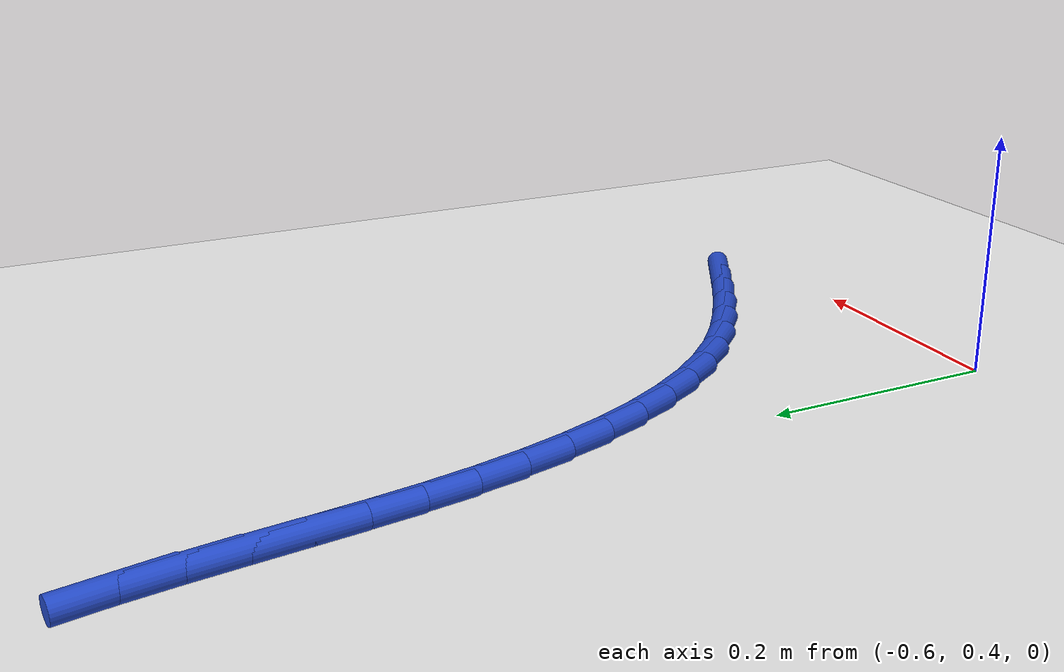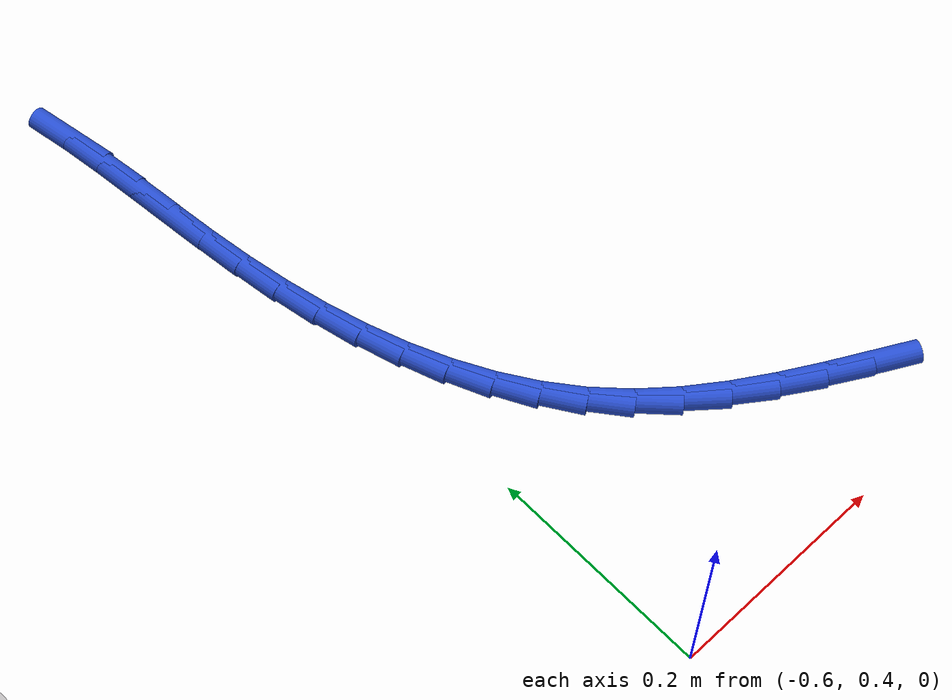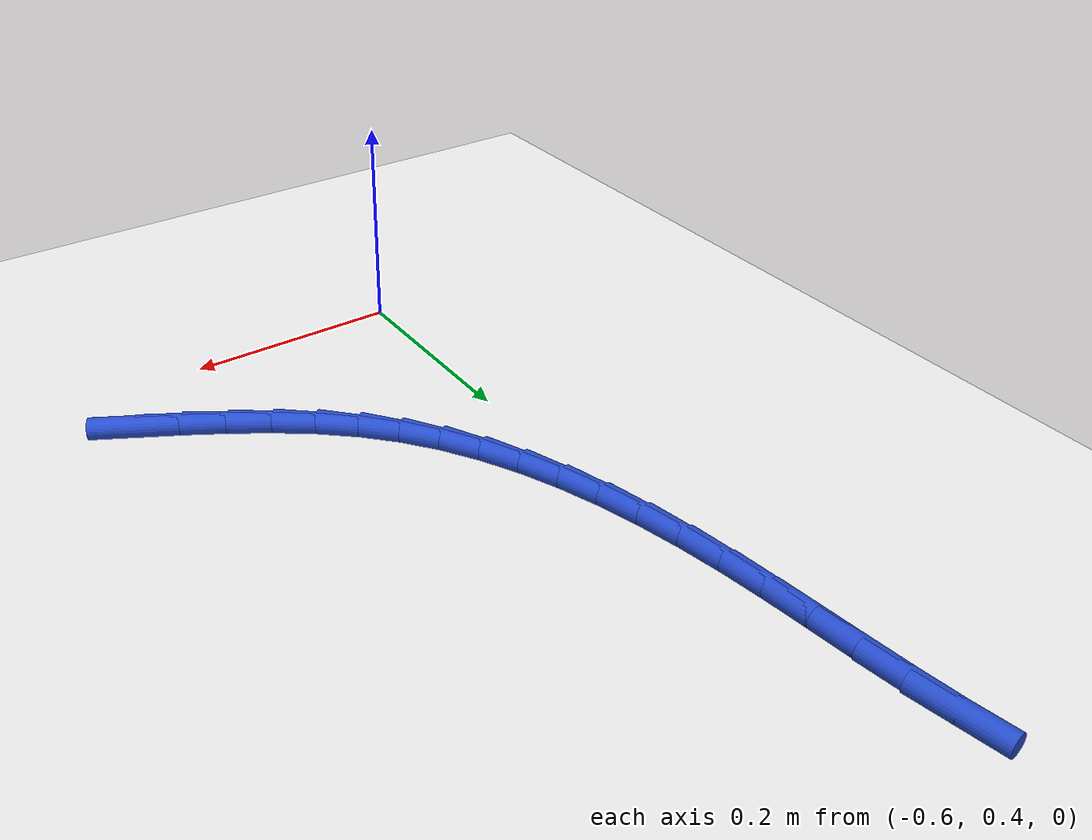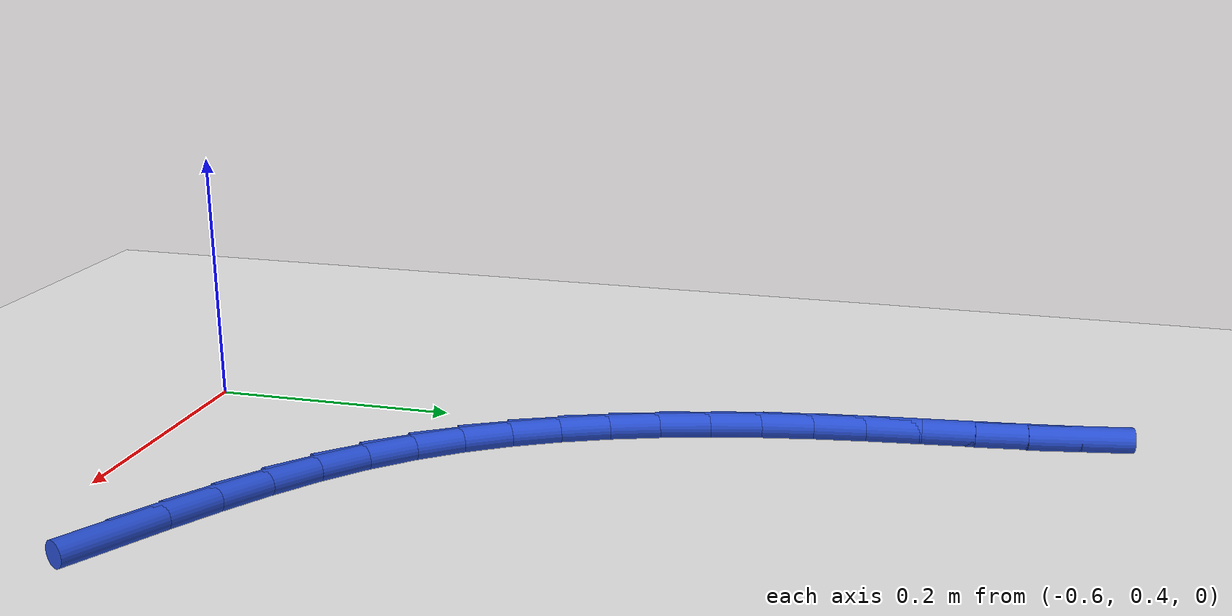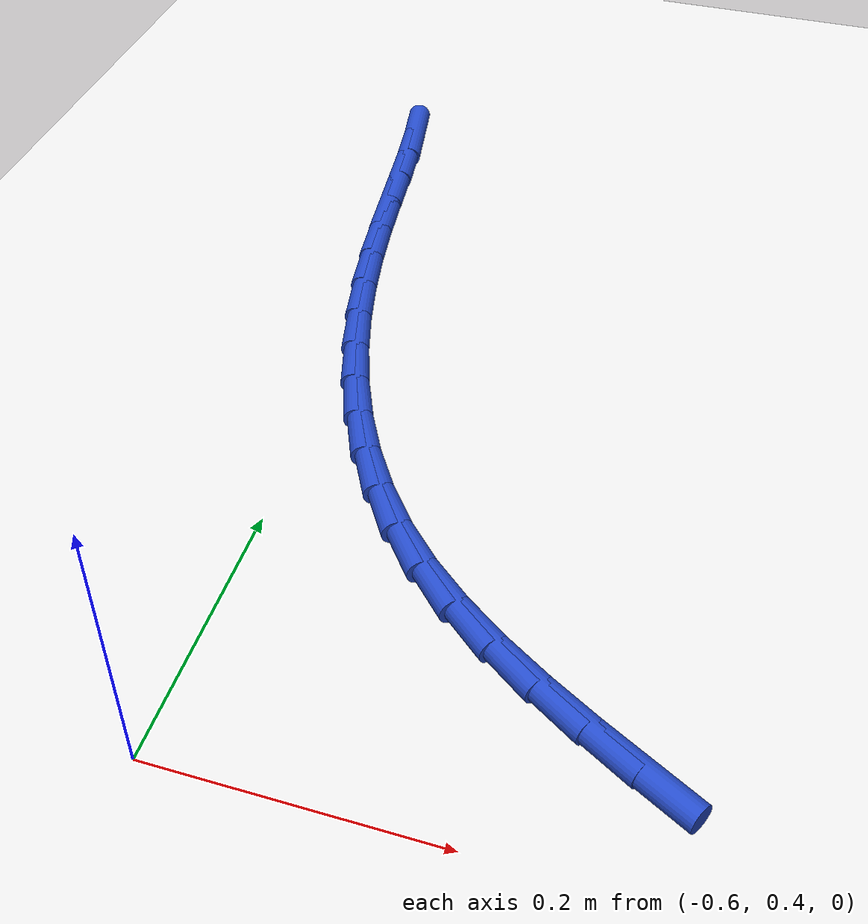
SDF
<sdf version="1.6">
 <world name="default">
  <model name="ground_plane">
   <static>1</static>
   <link name="link">
    <collision name="collision">
     <geometry><plane><normal>0 0 1</normal><size>100 100</size></plane></geometry>
     <surface><friction><ode><mu>100</mu><mu2>50</mu2></ode></friction></surface>
    </collision>
    <visual name="visual">
     <cast_shadows>0</cast_shadows>
     <geometry><plane><normal>0 0 1</normal><size>100 100</size></plane></geometry>
     <material>
      <script><uri>file://media/materials/scripts/gazebo.material</uri><name>Gazebo/WhiteGlow</name></script>
     </material>
    </visual>
   </link>
  </model>
  <model name="line">
   <link name="link_16">
    <pose>-0.30840696515279126 0.472543286809563 0.01 0 1.57 -0.49444323644424226</pose>
    <collision name="collision">
     <geometry><cylinder><radius>0.01</radius><length>0.08</length></cylinder></geometry>
    </collision>
    <visual name="visual">
     <material>
      <script><name>Gazebo/Blue</name><uri>file://media/materials/scripts/gazebo.material</uri></script>
     </material>
     <geometry><cylinder><radius>0.01</radius><length>0.08</length></cylinder></geometry>
    </visual>
   </link>
   <link name="link_17">
    <pose>-0.3446312967750047 0.4920721533720178 0.01 0 1.57 -0.5222612190505745</pose>
    <collision name="collision">
     <geometry><cylinder><radius>0.01</radius><length>0.08</length></cylinder></geometry>
    </collision>
    <visual name="visual">
     <material>
      <script><name>Gazebo/Blue</name><uri>file://media/materials/scripts/gazebo.material</uri></script>
     </material>
     <geometry><cylinder><radius>0.01</radius><length>0.08</length></cylinder></geometry>
    </visual>
   </link>
   <link name="link_18">
    <pose>-0.3800215166557068 0.5124416397845447 0.01 0 1.57 -0.5662065862711221</pose>
    <collision name="collision">
     <geometry><cylinder><radius>0.01</radius><length>0.08</length></cylinder></geometry>
    </collision>
    <visual name="visual">
     <material>
      <script><name>Gazebo/Blue</name><uri>file://media/materials/scripts/gazebo.material</uri></script>
     </material>
     <geometry><cylinder><radius>0.01</radius><length>0.08</length></cylinder></geometry>
    </visual>
   </link>
   <link name="link_19">
    <pose>-0.4140239692165846 0.534054605278595 0.01 0 1.57 -0.6276159613337432</pose>
    <collision name="collision">
     <geometry><cylinder><radius>0.01</radius><length>0.08</length></cylinder></geometry>
    </collision>
    <visual name="visual">
     <material>
      <script><name>Gazebo/Blue</name><uri>file://media/materials/scripts/gazebo.material</uri></script>
     </material>
     <geometry><cylinder><radius>0.01</radius><length>0.08</length></cylinder></geometry>
    </visual>
   </link>
   <link name="link_20">
    <pose>-0.44608499887932485 0.5573139090856203 0.01 0 1.57 -0.707967996527152</pose>
    <collision name="collision">
     <geometry><cylinder><radius>0.01</radius><length>0.08</length></cylinder></geometry>
    </collision>
    <visual name="visual">
     <material>
      <script><name>Gazebo/Blue</name><uri>file://media/materials/scripts/gazebo.material</uri></script>
     </material>
     <geometry><cylinder><radius>0.01</radius><length>0.08</length></cylinder></geometry>
    </visual>
   </link>
   <link name="link_21">
    <pose>-0.4756509500656144 0.5826224104370723 0.01 0 1.57 -0.8066006604199489</pose>
    <collision name="collision">
     <geometry><cylinder><radius>0.01</radius><length>0.08</length></cylinder></geometry>
    </collision>
    <visual name="visual">
     <material>
      <script><name>Gazebo/Blue</name><uri>file://media/materials/scripts/gazebo.material</uri></script>
     </material>
     <geometry><cylinder><radius>0.01</radius><length>0.08</length></cylinder></geometry>
    </visual>
   </link>
   <link name="link_22">
    <pose>-0.5022174997753895 0.6103400939409159 0.01 0 1.57 -0.9076254599743767</pose>
    <collision name="collision">
     <geometry><cylinder><radius>0.01</radius><length>0.08</length></cylinder></geometry>
    </collision>
    <visual name="visual">
     <material>
      <script><name>Gazebo/Blue</name><uri>file://media/materials/scripts/gazebo.material</uri></script>
     </material>
     <geometry><cylinder><radius>0.01</radius><length>0.08</length></cylinder></geometry>
    </visual>
   </link>
   <link name="link_23">
    <pose>-0.5257290914376277 0.6404369242150615 0.01 0 1.57 -1.0012967645038064</pose>
    <collision name="collision">
     <geometry><cylinder><radius>0.01</radius><length>0.08</length></cylinder></geometry>
    </collision>
    <visual name="visual">
     <material>
      <script><name>Gazebo/Blue</name><uri>file://media/materials/scripts/gazebo.material</uri></script>
     </material>
     <geometry><cylinder><radius>0.01</radius><length>0.08</length></cylinder></geometry>
    </visual>
   </link>
   <link name="link_24">
    <pose>-0.5463697206069192 0.6726746726802372 0.01 0 1.57 -1.0865871319223879</pose>
    <collision name="collision">
     <geometry><cylinder><radius>0.01</radius><length>0.08</length></cylinder></geometry>
    </collision>
    <visual name="visual">
     <material>
      <script><name>Gazebo/Blue</name><uri>file://media/materials/scripts/gazebo.material</uri></script>
     </material>
     <geometry><cylinder><radius>0.01</radius><length>0.08</length></cylinder></geometry>
    </visual>
   </link>
   <link name="link_25">
    <pose>-0.5643256303367371 0.7068131574704832 0.01 0 1.57 -1.163194079244653</pose>
    <collision name="collision">
     <geometry><cylinder><radius>0.01</radius><length>0.08</length></cylinder></geometry>
    </collision>
    <visual name="visual">
     <material>
      <script><name>Gazebo/Blue</name><uri>file://media/materials/scripts/gazebo.material</uri></script>
     </material>
     <geometry><cylinder><radius>0.01</radius><length>0.08</length></cylinder></geometry>
    </visual>
   </link>
   <link name="link_26">
    <pose>-0.579783063680555 0.7426121967198412 0.01 0 1.57 -1.2312902091395135</pose>
    <collision name="collision">
     <geometry><cylinder><radius>0.01</radius><length>0.08</length></cylinder></geometry>
    </collision>
    <visual name="visual">
     <material>
      <script><name>Gazebo/Blue</name><uri>file://media/materials/scripts/gazebo.material</uri></script>
     </material>
     <geometry><cylinder><radius>0.01</radius><length>0.08</length></cylinder></geometry>
    </visual>
   </link>
   <link name="link_27">
    <pose>-0.5929282636918456 0.779831608562351 0.01 0 1.57 -1.2913439107181948</pose>
    <collision name="collision">
     <geometry><cylinder><radius>0.01</radius><length>0.08</length></cylinder></geometry>
    </collision>
    <visual name="visual">
     <material>
      <script><name>Gazebo/Blue</name><uri>file://media/materials/scripts/gazebo.material</uri></script>
     </material>
     <geometry><cylinder><radius>0.01</radius><length>0.08</length></cylinder></geometry>
    </visual>
   </link>
   <link name="link_28">
    <pose>-0.6039474734240818 0.8182312111320537 0.01 0 1.57 -1.3439711569998176</pose>
    <collision name="collision">
     <geometry><cylinder><radius>0.01</radius><length>0.08</length></cylinder></geometry>
    </collision>
    <visual name="visual">
     <material>
      <script><name>Gazebo/Blue</name><uri>file://media/materials/scripts/gazebo.material</uri></script>
     </material>
     <geometry><cylinder><radius>0.01</radius><length>0.08</length></cylinder></geometry>
    </visual>
   </link>
   <link name="link_29">
    <pose>-0.613026935930737 0.8575708225629894 0.01 0 1.57 -1.389829488186364</pose>
    <collision name="collision">
     <geometry><cylinder><radius>0.01</radius><length>0.08</length></cylinder></geometry>
    </collision>
    <visual name="visual">
     <material>
      <script><name>Gazebo/Blue</name><uri>file://media/materials/scripts/gazebo.material</uri></script>
     </material>
     <geometry><cylinder><radius>0.01</radius><length>0.08</length></cylinder></geometry>
    </visual>
   </link>
   <link name="link_30">
    <pose>-0.6203528942652843 0.8976102609891994 0.01 0 1.57 -1.4286497479860152</pose>
    <collision name="collision">
     <geometry><cylinder><radius>0.01</radius><length>0.08</length></cylinder></geometry>
    </collision>
    <visual name="visual">
     <material>
      <script><name>Gazebo/Blue</name><uri>file://media/materials/scripts/gazebo.material</uri></script>
     </material>
     <geometry><cylinder><radius>0.01</radius><length>0.08</length></cylinder></geometry>
    </visual>
   </link>
   <link name="link_31">
    <pose>-0.6261477701496277 0.9381022201489617 0.01 0 1.57 -1.4544165192331961</pose>
    <collision name="collision">
     <geometry><cylinder><radius>0.01</radius><length>0.08</length></cylinder></geometry>
    </collision>
    <visual name="visual">
     <material>
      <script><name>Gazebo/Blue</name><uri>file://media/materials/scripts/gazebo.material</uri></script>
     </material>
     <geometry><cylinder><radius>0.01</radius><length>0.08</length></cylinder></geometry>
    </visual>
   </link>
   <link name="link_32">
    <pose>-0.6308994868947664 0.9787471105297207 0.01 0 1.57 -1.4645944888761098</pose>
    <collision name="collision">
     <geometry><cylinder><radius>0.01</radius><length>0.08</length></cylinder></geometry>
    </collision>
    <visual name="visual">
     <material>
      <script><name>Gazebo/Blue</name><uri>file://media/materials/scripts/gazebo.material</uri></script>
     </material>
     <geometry><cylinder><radius>0.01</radius><length>0.08</length></cylinder></geometry>
    </visual>
   </link>
   <link name="link_33">
    <pose>-0.6352142341851381 1.0192220533026923 0.01 0 1.57 -1.4590999739967583</pose>
    <collision name="collision">
     <geometry><cylinder><radius>0.01</radius><length>0.08</length></cylinder></geometry>
    </collision>
    <visual name="visual">
     <material>
      <script><name>Gazebo/Blue</name><uri>file://media/materials/scripts/gazebo.material</uri></script>
     </material>
     <geometry><cylinder><radius>0.01</radius><length>0.08</length></cylinder></geometry>
    </visual>
   </link>
   <link name="link_34">
    <pose>-0.63969874405213 1.0592040628387476 0.01 0 1.57 -1.4372700912046579</pose>
    <collision name="collision">
     <geometry><cylinder><radius>0.01</radius><length>0.08</length></cylinder></geometry>
    </collision>
    <visual name="visual">
     <material>
      <script><name>Gazebo/Blue</name><uri>file://media/materials/scripts/gazebo.material</uri></script>
     </material>
     <geometry><cylinder><radius>0.01</radius><length>0.08</length></cylinder></geometry>
    </visual>
   </link>
   <link name="link_35">
    <pose>-0.6449597485271279 1.0983701535087569 0.01 0 1.57 -1.3978192616607925</pose>
    <collision name="collision">
     <geometry><cylinder><radius>0.01</radius><length>0.08</length></cylinder></geometry>
    </collision>
    <visual name="visual">
     <material>
      <script><name>Gazebo/Blue</name><uri>file://media/materials/scripts/gazebo.material</uri></script>
     </material>
     <geometry><cylinder><radius>0.01</radius><length>0.08</length></cylinder></geometry>
    </visual>
   </link>
  </model>
 </world>
</sdf>
